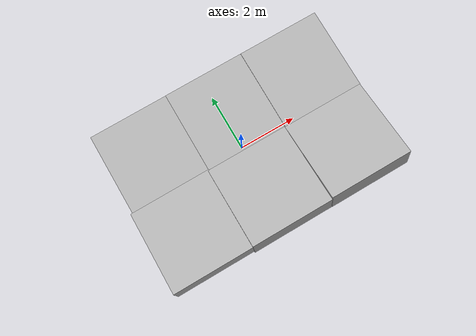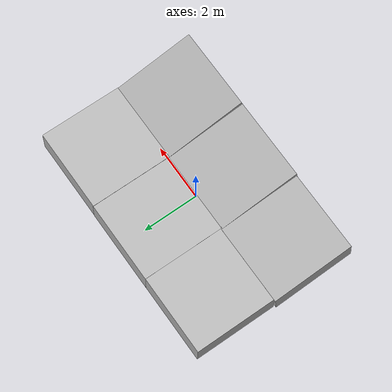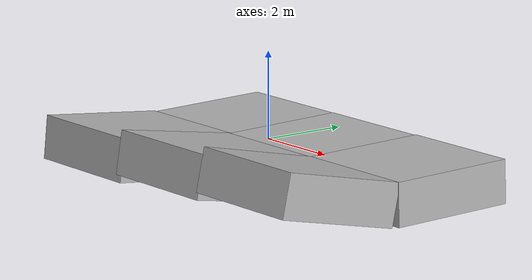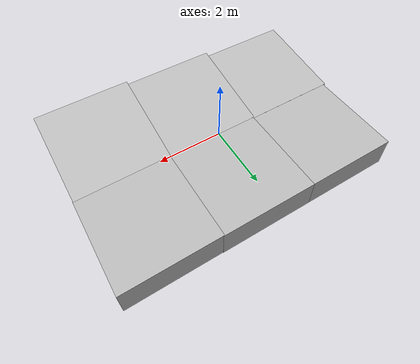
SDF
<sdf version="1.6">
 <world name="default">
  <light name="sun" type="directional">
   <pose>0 0 10 0 -0 0</pose>
   <diffuse>0.8 0.8 0.8 1</diffuse>
   <specular>0.2 0.2 0.2 1</specular>
   <attenuation>
    <range>1000</range>
    <constant>0.9</constant>
    <linear>0.01</linear>
    <quadratic>0.001</quadratic>
   </attenuation>
   <direction>-0.5 0.1 -0.9</direction>
  </light>
  <gravity>0 0 -9.8</gravity>
  <magnetic_field>6e-06 2.3e-05 -4.2e-05</magnetic_field>
  <atmosphere type="adiabatic"/>
  <physics name="default_physics" default="0" type="ode">
   <max_step_size>0.001</max_step_size>
   <real_time_factor>1</real_time_factor>
   <real_time_update_rate>1000</real_time_update_rate>
  </physics>
  <scene><ambient>0.4 0.4 0.4 1</ambient><background>0.7 0.7 0.7 1</background><shadows>1</shadows></scene>
  <audio><device>default</device></audio>
  <spherical_coordinates>
   <surface_model>EARTH_WGS84</surface_model>
   <latitude_deg>0</latitude_deg>
   <longitude_deg>0</longitude_deg>
   <elevation>0</elevation>
   <heading_deg>0</heading_deg>
  </spherical_coordinates>
  <model name="brick_box_3x1x3">
   <static>1</static>
   <link name="chassis">
    <pose>0 0 1.5 0 -0 0</pose>
    <collision name="collision">
     <geometry><box><size>3 1 3</size></box></geometry>
     <surface>
      <friction>
       <torsional><ode><mu>100.0</mu><mu2>100.0</mu2></ode></torsional>
       <ode><mu>100.0</mu><mu2>100.0</mu2></ode>
      </friction>
     </surface>
    </collision>
    <visual name="visual">
     <geometry><mesh><uri>model://brick_box_3x1x3/meshes/simple_box.dae</uri><scale>3 1 3</scale></mesh></geometry>
     <material>
      <script>
       <uri>model://brick_box_3x1x3/materials/scripts</uri>
       <uri>model://brick_box_3x1x3/materials/textures</uri>
       <name>BrickBox/Diffuse</name>
      </script>
     </material>
    </visual>
   </link>
   <pose>0.173677 -0.090175 -0.59509 -1.54661 0 0</pose>
  </model>
  <model name="brick_box_3x1x3_clone">
   <static>1</static>
   <link name="chassis">
    <pose>0 0 1.5 0 -0 0</pose>
    <collision name="collision">
     <geometry><box><size>3 1 3</size></box></geometry>
     <surface>
      <friction>
       <torsional><ode><mu>100.0</mu><mu2>100.0</mu2></ode></torsional>
       <ode><mu>100.0</mu><mu2>100.0</mu2></ode>
      </friction>
     </surface>
    </collision>
    <visual name="visual">
     <geometry><mesh><uri>model://brick_box_3x1x3/meshes/simple_box.dae</uri><scale>3 1 3</scale></mesh></geometry>
     <material>
      <script>
       <uri>model://brick_box_3x1x3/materials/scripts</uri>
       <uri>model://brick_box_3x1x3/materials/textures</uri>
       <name>BrickBox/Diffuse</name>
      </script>
     </material>
    </visual>
   </link>
   <pose>3.13956 -0.095366 -0.576063 -1.54661 0 0</pose>
  </model>
  <model name="brick_box_3x1x3_clone_0">
   <static>1</static>
   <link name="chassis">
    <pose>0 0 1.5 0 -0 0</pose>
    <collision name="collision">
     <geometry><box><size>3 1 3</size></box></geometry>
     <surface>
      <friction>
       <torsional><ode><mu>100.0</mu><mu2>100.0</mu2></ode></torsional>
       <ode><mu>100.0</mu><mu2>100.0</mu2></ode>
      </friction>
     </surface>
    </collision>
    <visual name="visual">
     <geometry><mesh><uri>model://brick_box_3x1x3/meshes/simple_box.dae</uri><scale>3 1 3</scale></mesh></geometry>
     <material>
      <script>
       <uri>model://brick_box_3x1x3/materials/scripts</uri>
       <uri>model://brick_box_3x1x3/materials/textures</uri>
       <name>BrickBox/Diffuse</name>
      </script>
     </material>
    </visual>
   </link>
   <pose>-2.70227 -0.092819 -0.599887 -1.54661 0 0</pose>
  </model>
  <model name="brick_box_3x1x3_clone_1">
   <static>1</static>
   <link name="chassis">
    <pose>0 0 1.5 0 -0 0</pose>
    <collision name="collision">
     <geometry><box><size>3 1 3</size></box></geometry>
     <surface>
      <friction>
       <torsional><ode><mu>100.0</mu><mu2>100.0</mu2></ode></torsional>
       <ode><mu>100.0</mu><mu2>100.0</mu2></ode>
      </friction>
     </surface>
    </collision>
    <visual name="visual">
     <geometry><mesh><uri>model://brick_box_3x1x3/meshes/simple_box.dae</uri><scale>3 1 3</scale></mesh></geometry>
     <material>
      <script>
       <uri>model://brick_box_3x1x3/materials/scripts</uri>
       <uri>model://brick_box_3x1x3/materials/textures</uri>
       <name>BrickBox/Diffuse</name>
      </script>
     </material>
    </visual>
   </link>
   <pose>-2.77303 -3.07819 -0.290894 -1.67198 0 0</pose>
  </model>
  <model name="brick_box_3x1x3_clone_2">
   <static>1</static>
   <link name="chassis">
    <pose>0 0 1.5 0 -0 0</pose>
    <collision name="collision">
     <geometry><box><size>3 1 3</size></box></geometry>
     <surface>
      <friction>
       <torsional><ode><mu>100.0</mu><mu2>100.0</mu2></ode></torsional>
       <ode><mu>100.0</mu><mu2>100.0</mu2></ode>
      </friction>
     </surface>
    </collision>
    <visual name="visual">
     <geometry><mesh><uri>model://brick_box_3x1x3/meshes/simple_box.dae</uri><scale>3 1 3</scale></mesh></geometry>
     <material>
      <script>
       <uri>model://brick_box_3x1x3/materials/scripts</uri>
       <uri>model://brick_box_3x1x3/materials/textures</uri>
       <name>BrickBox/Diffuse</name>
      </script>
     </material>
    </visual>
   </link>
   <pose>0.142013 -3.09887 -0.103887 -1.73354 0 0</pose>
  </model>
  <model name="brick_box_3x1x3_clone_3">
   <static>1</static>
   <link name="chassis">
    <pose>0 0 1.5 0 -0 0</pose>
    <collision name="collision">
     <geometry><box><size>3 1 3</size></box></geometry>
     <surface>
      <friction>
       <torsional><ode><mu>100.0</mu><mu2>100.0</mu2></ode></torsional>
       <ode><mu>100.0</mu><mu2>100.0</mu2></ode>
      </friction>
     </surface>
    </collision>
    <visual name="visual">
     <geometry><mesh><uri>model://brick_box_3x1x3/meshes/simple_box.dae</uri><scale>3 1 3</scale></mesh></geometry>
     <material>
      <script>
       <uri>model://brick_box_3x1x3/materials/scripts</uri>
       <uri>model://brick_box_3x1x3/materials/textures</uri>
       <name>BrickBox/Diffuse</name>
      </script>
     </material>
    </visual>
   </link>
   <pose>3.12642 -3.0849 0.065145 -1.78572 0 0</pose>
  </model>
 </world>
</sdf>
